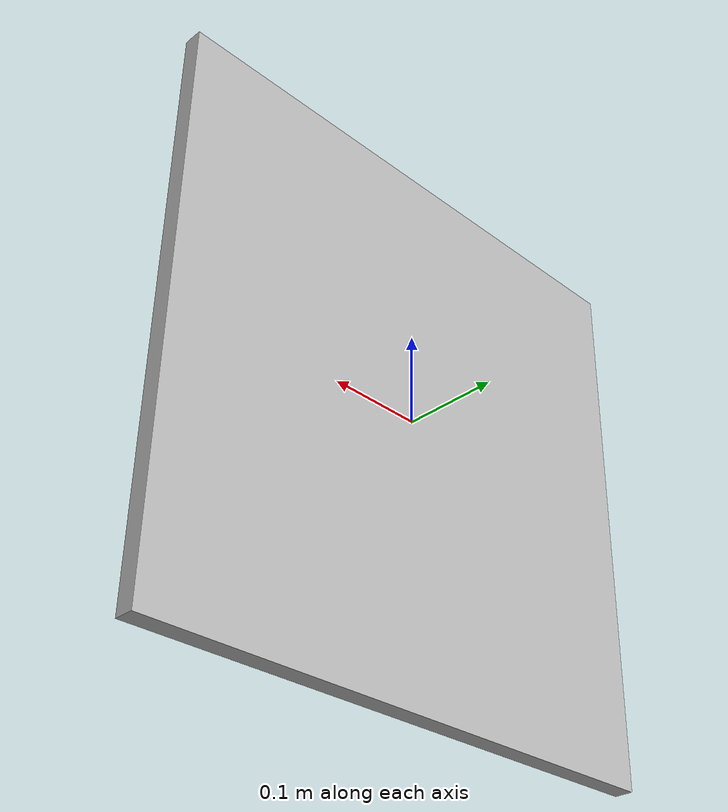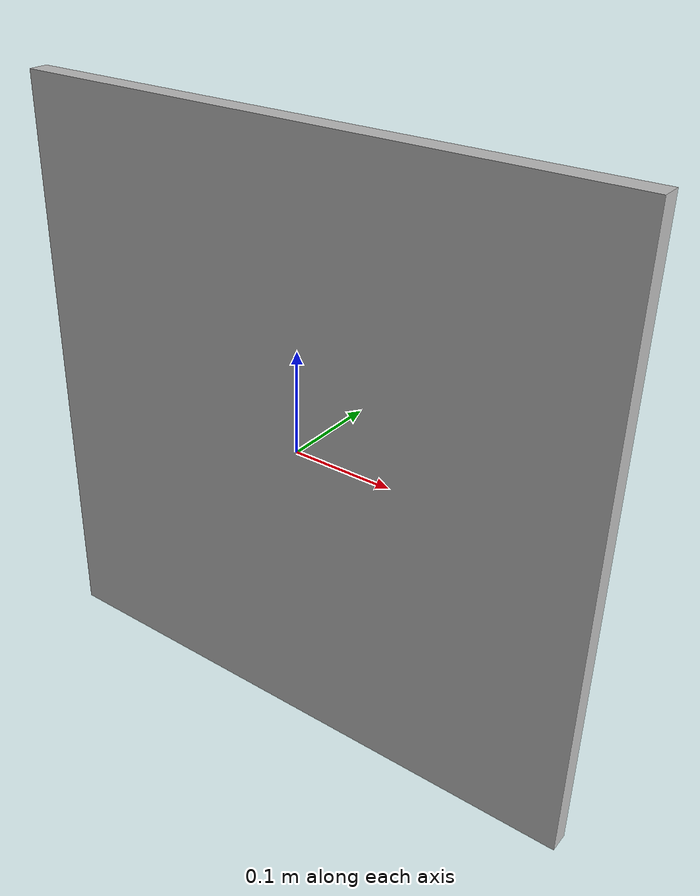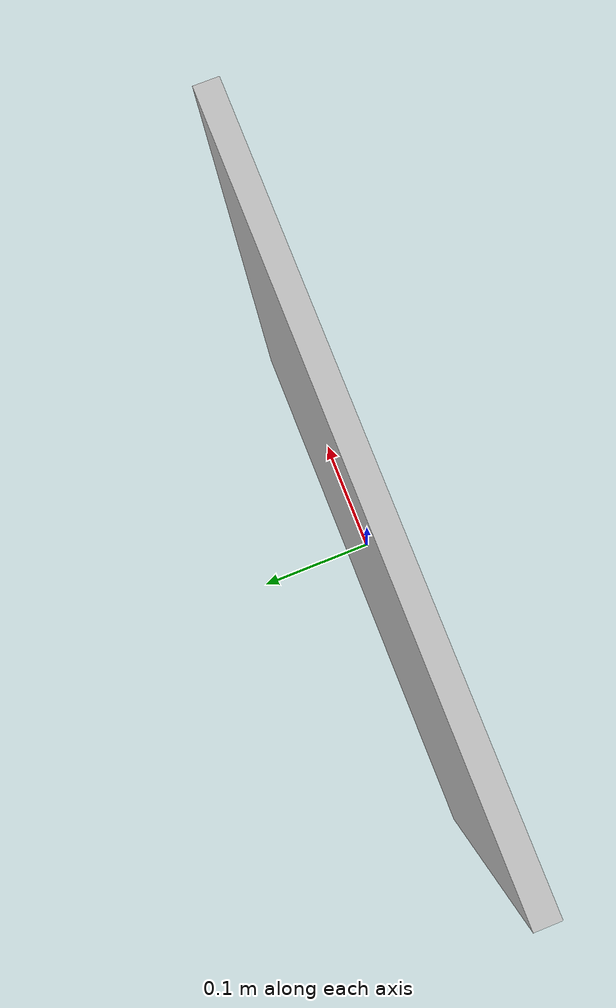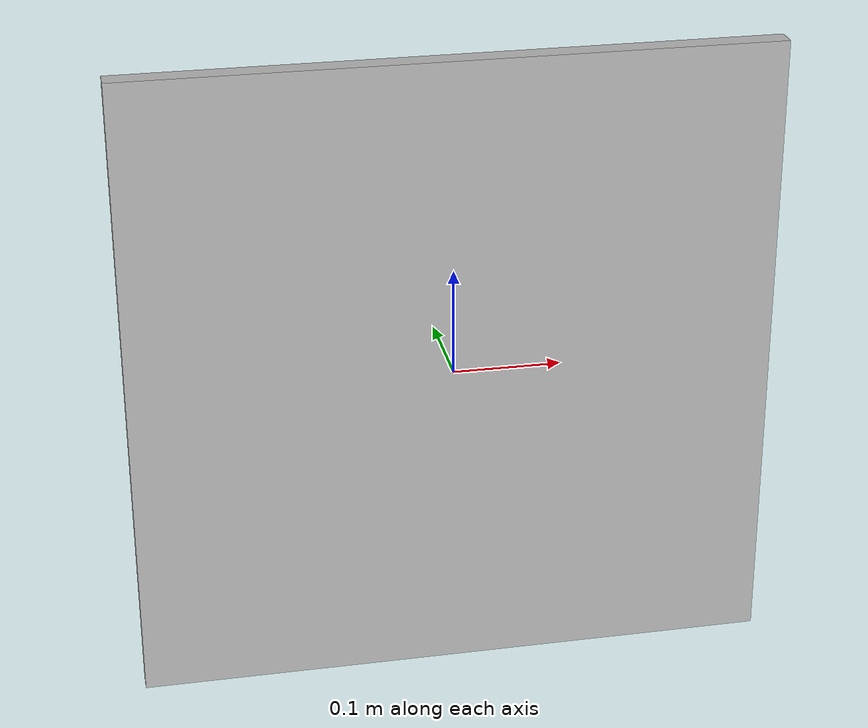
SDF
<?xml version="1.0" ?>
<sdf version="1.6">
  <model name="qr_information_desk">
    <static>true</static>
    <link name="qr_link">
      <visual name="qr_visual">
        <pose>0 0 0 0 0 0</pose>
        <geometry>
          <box>
            <size>0.60 0.02 0.60</size>
          </box>
        </geometry>
        <material>
          <script>
            <uri>model://qr_information_desk/materials/scripts</uri>
            <uri>model://qr_information_desk/materials/textures</uri>
            <name>QRInformationDesk</name>
          </script>
        </material>
      </visual>
    </link>
  </model>
</sdf>
